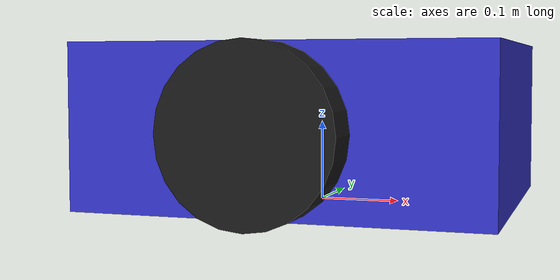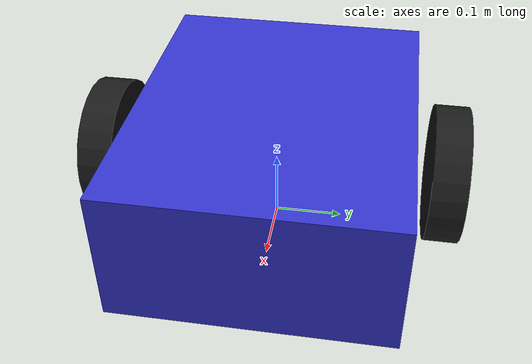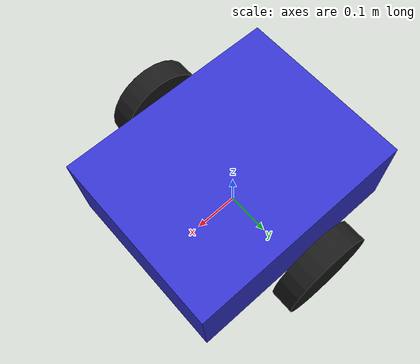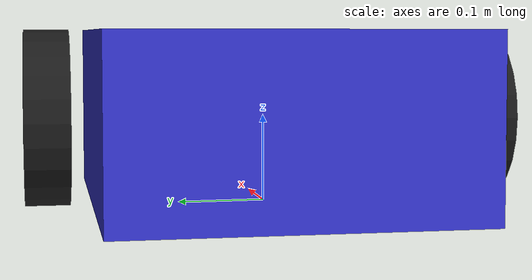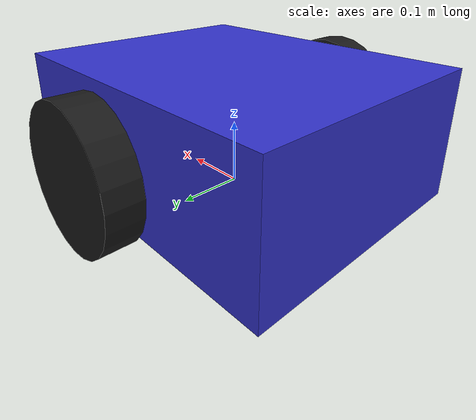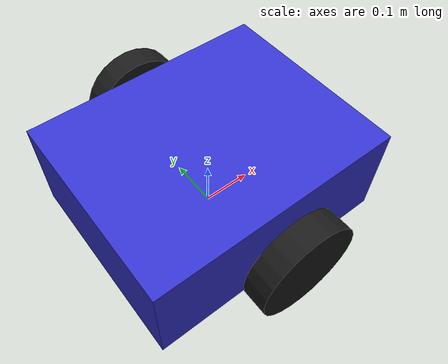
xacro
<?xml version="1.0"?>
<robot xmlns:xacro="http://ros.org/wiki/xacro" name="mobile_base">

  <!-- Base principale -->
  <link name="base_footprint"/>

  <link name="base_link">
    <visual>
      <geometry>
        <box size="0.5 0.4 0.2"/>
      </geometry>
      <material name="blue">
        <color rgba="0.2 0.2 0.8 1.0"/>
      </material>
    </visual>
    <collision>
      <geometry>
        <box size="0.5 0.4 0.2"/>
      </geometry>
    </collision>
    <inertial>
      <mass value="20.0"/>
      <inertia ixx="0.5" ixy="0.0" ixz="0.0" iyy="0.5" iyz="0.0" izz="0.5"/>
    </inertial>
  </link>

  <joint name="base_joint" type="fixed">
    <parent link="base_footprint"/>
    <child link="base_link"/>
    <origin xyz="0 0 0.1" rpy="0 0 0"/>
  </joint>

  <!-- Roues -->
  <xacro:macro name="wheel" params="prefix reflect">
    <link name="${prefix}_wheel">
      <visual>
        <geometry>
          <cylinder radius="0.1" length="0.05"/>
        </geometry>
        <material name="black">
          <color rgba="0.1 0.1 0.1 1.0"/>
        </material>
      </visual>
      <collision>
        <geometry>
          <cylinder radius="0.1" length="0.05"/>
        </geometry>
      </collision>
      <inertial>
        <mass value="1.0"/>
        <inertia ixx="0.01" ixy="0.0" ixz="0.0" iyy="0.01" iyz="0.0" izz="0.01"/>
      </inertial>
    </link>

    <joint name="${prefix}_wheel_joint" type="continuous">
      <parent link="base_link"/>
      <child link="${prefix}_wheel"/>
      <origin xyz="0 ${reflect*0.25} 0" rpy="-1.5707 0 0"/>
      <axis xyz="0 0 1"/>
    </joint>
  </xacro:macro>

  <xacro:wheel prefix="left" reflect="1"/>
  <xacro:wheel prefix="right" reflect="-1"/>

  <!-- Roue folle avant -->
  <link name="caster_wheel">
    <visual>
      <geometry>
        <sphere radius="0.05"/>
      </geometry>
      <material name="grey">
        <color rgba="0.5 0.5 0.5 1.0"/>
      </material>
    </visual>
    <collision>
      <geometry>
        <sphere radius="0.05"/>
      </geometry>
    </collision>
    <inertial>
      <mass value="0.5"/>
      <inertia ixx="0.001" ixy="0.0" ixz="0.0" iyy="0.001" iyz="0.0" izz="0.001"/>
    </inertial>
  </link>

  <joint name="caster_joint" type="fixed">
    <parent link="base_link"/>
    <child link="caster_wheel"/>
    <origin xyz="0.2 0 -0.05" rpy="0 0 0"/>
  </joint>

  <!-- Plugin Gazebo pour le contrôle différentiel -->
  <gazebo>
    <plugin name="differential_drive_controller" filename="libgazebo_ros_diff_drive.so">
      <update_rate>50</update_rate>
      <left_joint>left_wheel_joint</left_joint>
      <right_joint>right_wheel_joint</right_joint>
      <wheel_separation>0.5</wheel_separation>
      <wheel_diameter>0.2</wheel_diameter>
      <max_wheel_torque>20</max_wheel_torque>
      <max_wheel_acceleration>1.0</max_wheel_acceleration>
      <command_topic>cmd_vel</command_topic>
      <publish_odom>true</publish_odom>
      <publish_odom_tf>true</publish_odom_tf>
      <publish_wheel_tf>true</publish_wheel_tf>
      <odometry_topic>odom</odometry_topic>
      <odometry_frame>odom</odometry_frame>
      <robot_base_frame>base_footprint</robot_base_frame>
    </plugin>
  </gazebo>

</robot>
